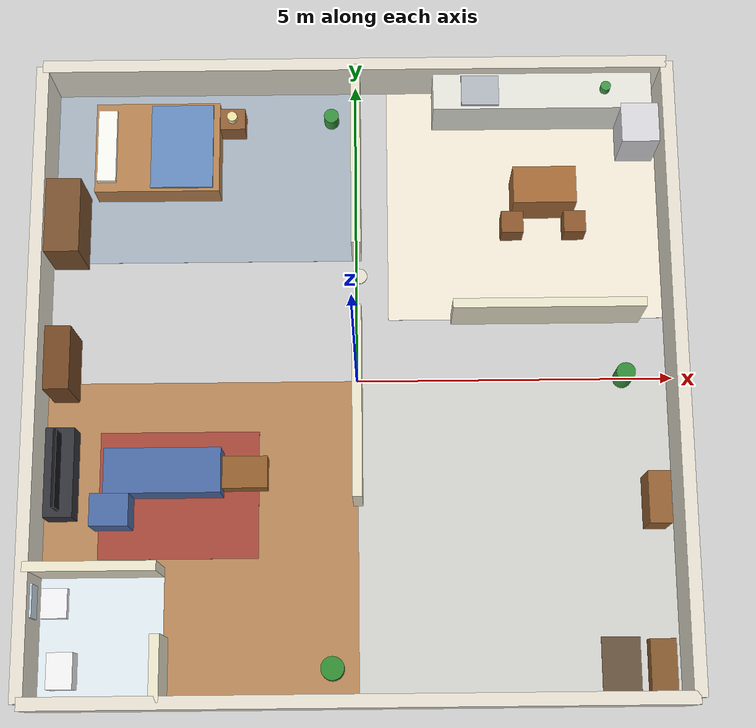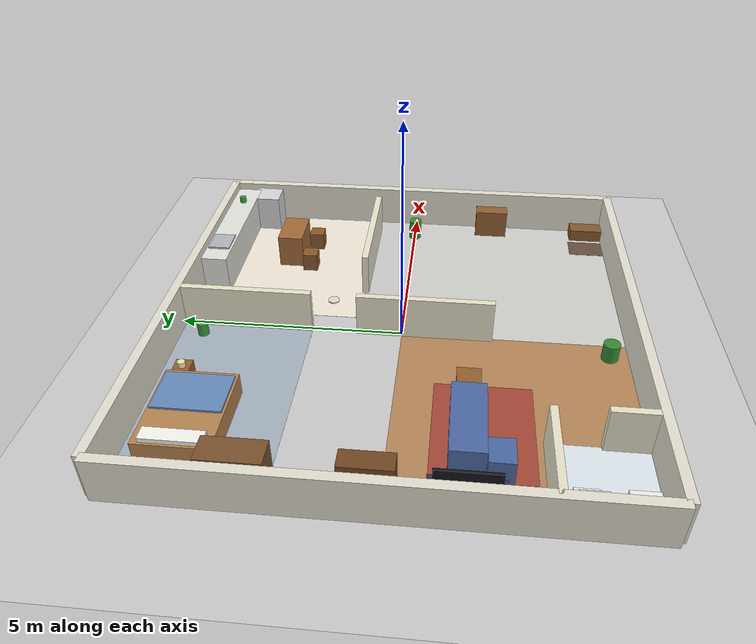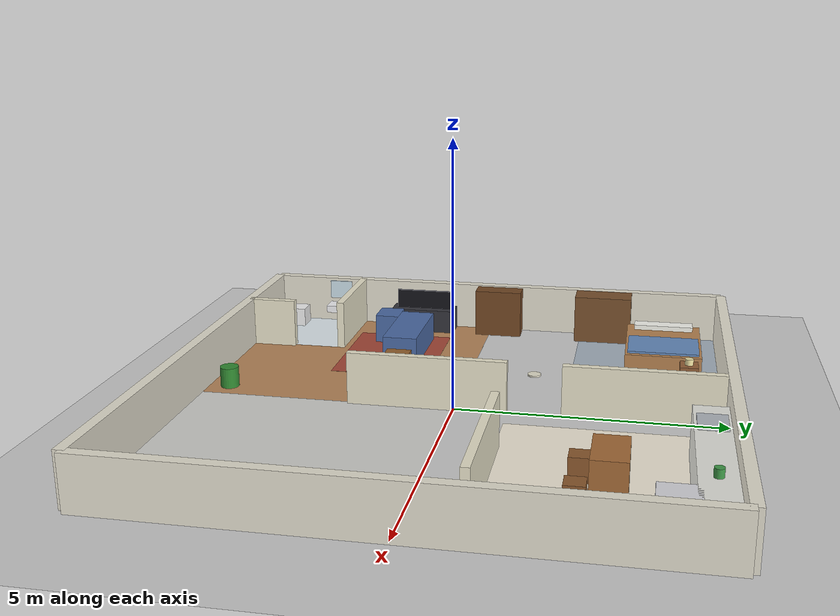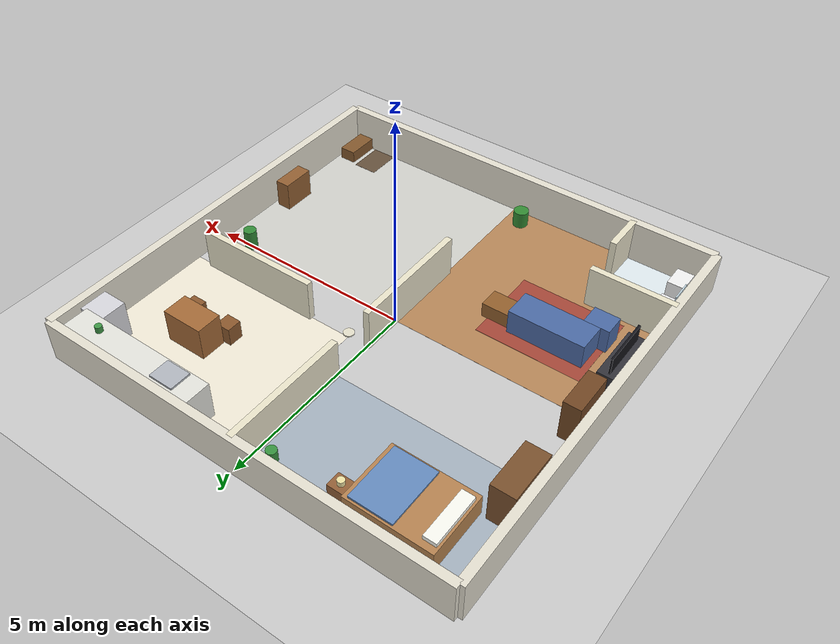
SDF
<?xml version="1.0" ?>
<sdf version="1.8">
  <world name="apartment">
    <!-- Physics configuration -->
    <physics type="ode">
      <real_time_update_rate>1000.0</real_time_update_rate>
      <max_step_size>0.001</max_step_size>
      <real_time_factor>1</real_time_factor>
      <ode>
        <solver>
          <type>quick</type>
          <iters>150</iters>
          <precon_iters>0</precon_iters>
          <sor>1.400000</sor>
          <use_dynamic_moi_rescaling>1</use_dynamic_moi_rescaling>
        </solver>
        <constraints>
          <cfm>0.00001</cfm>
          <erp>0.2</erp>
          <contact_max_correcting_vel>2000.000000</contact_max_correcting_vel>
          <contact_surface_layer>0.01000</contact_surface_layer>
        </constraints>
      </ode>
    </physics>

    <!-- Required Gazebo Harmonic plugins -->
    <plugin
      filename="gz-sim-physics-system"
      name="gz::sim::systems::Physics">
    </plugin>
    <plugin
      filename="gz-sim-user-commands-system"
      name="gz::sim::systems::UserCommands">
    </plugin>
    <plugin
      filename="gz-sim-scene-broadcaster-system"
      name="gz::sim::systems::SceneBroadcaster">
    </plugin>
    <plugin
      filename="gz-sim-sensors-system"
      name="gz::sim::systems::Sensors">
      <render_engine>ogre2</render_engine>
    </plugin>
    <plugin
      filename="gz-sim-imu-system"
      name="gz::sim::systems::Imu">
    </plugin>

    <!-- Ground Plane -->
    <include>
      <uri>https://fuel.gazebosim.org/1.0/OpenRobotics/models/Ground Plane</uri>
    </include>

    <!-- Sun -->
    <include>
      <uri>https://fuel.gazebosim.org/1.0/OpenRobotics/models/Sun</uri>
    </include>

    <!--                         FLOOR TILES                                -->

    <!-- Kitchen floor (light tile) -->
    <model name="floor_kitchen">
      <static>true</static>
      <pose>2.75 3.0 0.001 0 0 0</pose>
      <link name="link">
        <visual name="vis"><geometry><box><size>4.5 4.0 0.002</size></box></geometry>
          <material><ambient>0.95 0.92 0.85 1</ambient><diffuse>0.95 0.92 0.85 1</diffuse></material></visual>
      </link>
    </model>

    <!-- Living room floor (warm wood) -->
    <model name="floor_living">
      <static>true</static>
      <pose>-2.5 -2.5 0.001 0 0 0</pose>
      <link name="link">
        <visual name="vis"><geometry><box><size>5.0 5.0 0.002</size></box></geometry>
          <material><ambient>0.72 0.53 0.35 1</ambient><diffuse>0.72 0.53 0.35 1</diffuse></material></visual>
      </link>
    </model>

    <!-- Bedroom floor (carpet - soft blue-grey) -->
    <model name="floor_bedroom">
      <static>true</static>
      <pose>-2.5 3.5 0.001 0 0 0</pose>
      <link name="link">
        <visual name="vis"><geometry><box><size>5.0 3.0 0.002</size></box></geometry>
          <material><ambient>0.65 0.70 0.75 1</ambient><diffuse>0.65 0.70 0.75 1</diffuse></material></visual>
      </link>
    </model>

    <!-- Hallway floor (neutral grey tile) -->
    <model name="floor_hallway">
      <static>true</static>
      <pose>2.5 -2.5 0.001 0 0 0</pose>
      <link name="link">
        <visual name="vis"><geometry><box><size>5.0 5.0 0.002</size></box></geometry>
          <material><ambient>0.82 0.82 0.80 1</ambient><diffuse>0.82 0.82 0.80 1</diffuse></material></visual>
      </link>
    </model>

    <!--                         OUTER WALLS                                -->

    <model name="wall_north">
      <static>true</static>
      <pose>0 5 0.5 0 0 0</pose>
      <link name="link">
        <collision name="col"><geometry><box><size>10 0.2 1</size></box></geometry></collision>
        <visual name="vis"><geometry><box><size>10 0.2 1</size></box></geometry>
          <material><ambient>0.90 0.88 0.82 1</ambient><diffuse>0.90 0.88 0.82 1</diffuse></material></visual>
      </link>
    </model>

    <model name="wall_south">
      <static>true</static>
      <pose>0 -5 0.5 0 0 0</pose>
      <link name="link">
        <collision name="col"><geometry><box><size>10 0.2 1</size></box></geometry></collision>
        <visual name="vis"><geometry><box><size>10 0.2 1</size></box></geometry>
          <material><ambient>0.90 0.88 0.82 1</ambient><diffuse>0.90 0.88 0.82 1</diffuse></material></visual>
      </link>
    </model>

    <model name="wall_east">
      <static>true</static>
      <pose>5 0 0.5 0 0 1.5708</pose>
      <link name="link">
        <collision name="col"><geometry><box><size>10 0.2 1</size></box></geometry></collision>
        <visual name="vis"><geometry><box><size>10 0.2 1</size></box></geometry>
          <material><ambient>0.90 0.88 0.82 1</ambient><diffuse>0.90 0.88 0.82 1</diffuse></material></visual>
      </link>
    </model>

    <model name="wall_west">
      <static>true</static>
      <pose>-5 0 0.5 0 0 1.5708</pose>
      <link name="link">
        <collision name="col"><geometry><box><size>10 0.2 1</size></box></geometry></collision>
        <visual name="vis"><geometry><box><size>10 0.2 1</size></box></geometry>
          <material><ambient>0.90 0.88 0.82 1</ambient><diffuse>0.90 0.88 0.82 1</diffuse></material></visual>
      </link>
    </model>

    <!--                       INTERIOR WALLS                               -->

    <!-- Interior dividing wall (bedroom/living room split) — lower section -->
    <!-- Runs along X=0, from Y=-2 to Y=1 (doorway gap Y=1 to Y=2) -->
    <model name="wall_interior_left">
      <static>true</static>
      <pose>0 -0.5 0.5 0 0 1.5708</pose>
      <link name="link">
        <collision name="col"><geometry><box><size>3 0.15 1</size></box></geometry></collision>
        <visual name="vis"><geometry><box><size>3 0.15 1</size></box></geometry>
          <material><ambient>0.92 0.90 0.80 1</ambient><diffuse>0.92 0.90 0.80 1</diffuse></material></visual>
      </link>
    </model>

    <!-- Interior dividing wall — upper section (above doorway) -->
    <model name="wall_interior_right">
      <static>true</static>
      <pose>0 3.5 0.5 0 0 1.5708</pose>
      <link name="link">
        <collision name="col"><geometry><box><size>3 0.15 1</size></box></geometry></collision>
        <visual name="vis"><geometry><box><size>3 0.15 1</size></box></geometry>
          <material><ambient>0.92 0.90 0.80 1</ambient><diffuse>0.92 0.90 0.80 1</diffuse></material></visual>
      </link>
    </model>

    <!-- Kitchen wall (partial wall creating kitchen area) -->
    <!-- Runs along Y=1, from X=1.5 to X=4.5 (doorway gap X=0 to X=1.5) -->
    <model name="wall_kitchen">
      <static>true</static>
      <pose>3.0 1 0.5 0 0 0</pose>
      <link name="link">
        <collision name="col"><geometry><box><size>3 0.15 1</size></box></geometry></collision>
        <visual name="vis"><geometry><box><size>3 0.15 1</size></box></geometry>
          <material><ambient>0.92 0.90 0.80 1</ambient><diffuse>0.92 0.90 0.80 1</diffuse></material></visual>
      </link>
    </model>

    <!-- Bathroom wall — creates small bathroom in bottom-left corner -->
    <!-- Runs along Y=-3, from X=-5 to X=-3 -->
    <model name="wall_bathroom_h">
      <static>true</static>
      <pose>-4.0 -3.0 0.5 0 0 0</pose>
      <link name="link">
        <collision name="col"><geometry><box><size>2.0 0.15 1</size></box></geometry></collision>
        <visual name="vis"><geometry><box><size>2.0 0.15 1</size></box></geometry>
          <material><ambient>0.92 0.90 0.80 1</ambient><diffuse>0.92 0.90 0.80 1</diffuse></material></visual>
      </link>
    </model>

    <!-- Bathroom wall vertical — from (-3, -5) to (-3, -3) with doorway gap -->
    <model name="wall_bathroom_v">
      <static>true</static>
      <pose>-3.0 -4.5 0.5 0 0 1.5708</pose>
      <link name="link">
        <collision name="col"><geometry><box><size>1.0 0.15 1</size></box></geometry></collision>
        <visual name="vis"><geometry><box><size>1.0 0.15 1</size></box></geometry>
          <material><ambient>0.92 0.90 0.80 1</ambient><diffuse>0.92 0.90 0.80 1</diffuse></material></visual>
      </link>
    </model>

    <!--                     KITCHEN FURNITURE                              -->

    <!-- Kitchen table (wooden) -->
    <model name="kitchen_table">
      <static>true</static>
      <pose>3.0 3.0 0.4 0 0 0</pose>
      <link name="link">
        <collision name="col"><geometry><box><size>1.0 0.6 0.8</size></box></geometry></collision>
        <visual name="vis"><geometry><box><size>1.0 0.6 0.8</size></box></geometry>
          <material><ambient>0.55 0.35 0.18 1</ambient><diffuse>0.65 0.42 0.22 1</diffuse></material></visual>
      </link>
    </model>

    <!-- Kitchen chair 1 -->
    <model name="kitchen_chair1">
      <static>true</static>
      <pose>2.5 2.5 0.22 0 0 0</pose>
      <link name="link">
        <collision name="col"><geometry><box><size>0.35 0.35 0.44</size></box></geometry></collision>
        <visual name="vis"><geometry><box><size>0.35 0.35 0.44</size></box></geometry>
          <material><ambient>0.50 0.30 0.15 1</ambient><diffuse>0.55 0.35 0.18 1</diffuse></material></visual>
      </link>
    </model>

    <!-- Kitchen chair 2 -->
    <model name="kitchen_chair2">
      <static>true</static>
      <pose>3.5 2.5 0.22 0 0 0</pose>
      <link name="link">
        <collision name="col"><geometry><box><size>0.35 0.35 0.44</size></box></geometry></collision>
        <visual name="vis"><geometry><box><size>0.35 0.35 0.44</size></box></geometry>
          <material><ambient>0.50 0.30 0.15 1</ambient><diffuse>0.55 0.35 0.18 1</diffuse></material></visual>
      </link>
    </model>

    <!-- Kitchen counter (along north wall) -->
    <model name="kitchen_counter">
      <static>true</static>
      <pose>3.0 4.55 0.45 0 0 0</pose>
      <link name="link">
        <collision name="col"><geometry><box><size>3.5 0.6 0.9</size></box></geometry></collision>
        <visual name="vis"><geometry><box><size>3.5 0.6 0.9</size></box></geometry>
          <material><ambient>0.85 0.85 0.82 1</ambient><diffuse>0.90 0.90 0.87 1</diffuse></material></visual>
      </link>
    </model>

    <!-- Fridge (tall, against east wall in kitchen) -->
    <model name="fridge">
      <static>true</static>
      <pose>4.55 4.0 0.45 0 0 0</pose>
      <link name="link">
        <collision name="col"><geometry><box><size>0.6 0.65 0.9</size></box></geometry></collision>
        <visual name="vis"><geometry><box><size>0.6 0.65 0.9</size></box></geometry>
          <material><ambient>0.78 0.78 0.80 1</ambient><diffuse>0.85 0.85 0.87 1</diffuse></material></visual>
      </link>
    </model>

    <!-- Kitchen sink cabinet (on counter, visual only — shorter) -->
    <model name="kitchen_sink">
      <static>true</static>
      <pose>2.0 4.55 0.92 0 0 0</pose>
      <link name="link">
        <visual name="vis"><geometry><box><size>0.6 0.5 0.05</size></box></geometry>
          <material><ambient>0.60 0.62 0.65 1</ambient><diffuse>0.70 0.72 0.75 1</diffuse></material></visual>
      </link>
    </model>

    <!--                    LIVING ROOM FURNITURE                           -->

    <!-- Couch (blue, L-shaped feel) -->
    <model name="couch">
      <static>true</static>
      <pose>-3.0 -1.5 0.3 0 0 0</pose>
      <link name="link">
        <collision name="col"><geometry><box><size>1.8 0.7 0.6</size></box></geometry></collision>
        <visual name="vis"><geometry><box><size>1.8 0.7 0.6</size></box></geometry>
          <material><ambient>0.25 0.35 0.55 1</ambient><diffuse>0.30 0.42 0.65 1</diffuse></material></visual>
      </link>
    </model>

    <!-- Couch arm/side section -->
    <model name="couch_side">
      <static>true</static>
      <pose>-3.8 -2.1 0.3 0 0 0</pose>
      <link name="link">
        <collision name="col"><geometry><box><size>0.6 0.5 0.6</size></box></geometry></collision>
        <visual name="vis"><geometry><box><size>0.6 0.5 0.6</size></box></geometry>
          <material><ambient>0.25 0.35 0.55 1</ambient><diffuse>0.30 0.42 0.65 1</diffuse></material></visual>
      </link>
    </model>

    <!-- Coffee table (low, wooden) -->
    <model name="coffee_table">
      <static>true</static>
      <pose>-1.8 -1.5 0.18 0 0 0</pose>
      <link name="link">
        <collision name="col"><geometry><box><size>0.8 0.5 0.36</size></box></geometry></collision>
        <visual name="vis"><geometry><box><size>0.8 0.5 0.36</size></box></geometry>
          <material><ambient>0.50 0.32 0.15 1</ambient><diffuse>0.58 0.38 0.18 1</diffuse></material></visual>
      </link>
    </model>

    <!-- TV stand (dark, along west wall) -->
    <model name="tv_stand">
      <static>true</static>
      <pose>-4.6 -1.5 0.25 0 0 0</pose>
      <link name="link">
        <collision name="col"><geometry><box><size>0.45 1.4 0.5</size></box></geometry></collision>
        <visual name="vis"><geometry><box><size>0.45 1.4 0.5</size></box></geometry>
          <material><ambient>0.15 0.15 0.18 1</ambient><diffuse>0.20 0.20 0.23 1</diffuse></material></visual>
      </link>
    </model>

    <!-- TV (thin, on stand) -->
    <model name="tv_screen">
      <static>true</static>
      <pose>-4.6 -1.5 0.7 0 0 0</pose>
      <link name="link">
        <visual name="vis"><geometry><box><size>0.05 1.2 0.4</size></box></geometry>
          <material><ambient>0.05 0.05 0.08 1</ambient><diffuse>0.08 0.08 0.10 1</diffuse></material></visual>
      </link>
    </model>

    <!-- Bookshelf (tall, dark wood) -->
    <model name="bookshelf">
      <static>true</static>
      <pose>-4.6 0.2 0.5 0 0 0</pose>
      <link name="link">
        <collision name="col"><geometry><box><size>0.4 1.0 1.0</size></box></geometry></collision>
        <visual name="vis"><geometry><box><size>0.4 1.0 1.0</size></box></geometry>
          <material><ambient>0.40 0.22 0.10 1</ambient><diffuse>0.45 0.28 0.14 1</diffuse></material></visual>
      </link>
    </model>

    <!-- Living room rug (visual only, flat on floor) -->
    <model name="rug">
      <static>true</static>
      <pose>-2.8 -1.8 0.003 0 0 0</pose>
      <link name="link">
        <visual name="vis"><geometry><box><size>2.5 2.0 0.005</size></box></geometry>
          <material><ambient>0.55 0.22 0.18 1</ambient><diffuse>0.65 0.28 0.22 1</diffuse></material></visual>
      </link>
    </model>

    <!-- Floor plant (in corner) -->
    <model name="plant_living">
      <static>true</static>
      <pose>-0.4 -4.5 0.2 0 0 0</pose>
      <link name="link">
        <collision name="col"><geometry><cylinder><radius>0.18</radius><length>0.4</length></cylinder></geometry></collision>
        <visual name="vis"><geometry><cylinder><radius>0.18</radius><length>0.4</length></cylinder></geometry>
          <material><ambient>0.15 0.45 0.15 1</ambient><diffuse>0.20 0.55 0.20 1</diffuse></material></visual>
      </link>
    </model>

    <!-- Plant pot -->
    <model name="plant_pot_living">
      <static>true</static>
      <pose>-0.4 -4.5 0.005 0 0 0</pose>
      <link name="link">
        <visual name="vis"><geometry><cylinder><radius>0.15</radius><length>0.01</length></cylinder></geometry>
          <material><ambient>0.55 0.30 0.15 1</ambient><diffuse>0.60 0.35 0.18 1</diffuse></material></visual>
      </link>
    </model>

    <!--                     BEDROOM FURNITURE                              -->

    <!-- Bed (large, warm brown) -->
    <model name="bed">
      <static>true</static>
      <pose>-3.2 3.8 0.25 0 0 0</pose>
      <link name="link">
        <collision name="col"><geometry><box><size>2.0 1.5 0.5</size></box></geometry></collision>
        <visual name="vis"><geometry><box><size>2.0 1.5 0.5</size></box></geometry>
          <material><ambient>0.65 0.45 0.28 1</ambient><diffuse>0.72 0.52 0.32 1</diffuse></material></visual>
      </link>
    </model>

    <!-- Bed pillow (white, on top of bed) -->
    <model name="pillow">
      <static>true</static>
      <pose>-4.0 3.8 0.55 0 0 0</pose>
      <link name="link">
        <visual name="vis"><geometry><box><size>0.3 1.2 0.1</size></box></geometry>
          <material><ambient>0.95 0.95 0.92 1</ambient><diffuse>0.98 0.98 0.95 1</diffuse></material></visual>
      </link>
    </model>

    <!-- Bed blanket (blue, on top of bed) -->
    <model name="blanket">
      <static>true</static>
      <pose>-2.8 3.8 0.52 0 0 0</pose>
      <link name="link">
        <visual name="vis"><geometry><box><size>1.0 1.4 0.05</size></box></geometry>
          <material><ambient>0.35 0.50 0.70 1</ambient><diffuse>0.40 0.55 0.75 1</diffuse></material></visual>
      </link>
    </model>

    <!-- Nightstand -->
    <model name="nightstand">
      <static>true</static>
      <pose>-2.0 4.3 0.22 0 0 0</pose>
      <link name="link">
        <collision name="col"><geometry><box><size>0.4 0.35 0.44</size></box></geometry></collision>
        <visual name="vis"><geometry><box><size>0.4 0.35 0.44</size></box></geometry>
          <material><ambient>0.50 0.32 0.18 1</ambient><diffuse>0.58 0.38 0.22 1</diffuse></material></visual>
      </link>
    </model>

    <!-- Bedside lamp (on nightstand) -->
    <model name="bedside_lamp">
      <static>true</static>
      <pose>-2.0 4.3 0.5 0 0 0</pose>
      <link name="link">
        <visual name="vis"><geometry><cylinder><radius>0.08</radius><length>0.12</length></cylinder></geometry>
          <material><ambient>0.90 0.85 0.60 1</ambient><diffuse>0.95 0.90 0.65 1</diffuse></material></visual>
      </link>
    </model>

    <!-- Wardrobe (tall, against west wall) -->
    <model name="wardrobe">
      <static>true</static>
      <pose>-4.6 2.5 0.5 0 0 0</pose>
      <link name="link">
        <collision name="col"><geometry><box><size>0.55 1.2 1.0</size></box></geometry></collision>
        <visual name="vis"><geometry><box><size>0.55 1.2 1.0</size></box></geometry>
          <material><ambient>0.42 0.28 0.14 1</ambient><diffuse>0.48 0.32 0.18 1</diffuse></material></visual>
      </link>
    </model>

    <!-- Bedroom plant -->
    <model name="plant_bedroom">
      <static>true</static>
      <pose>-0.4 4.4 0.15 0 0 0</pose>
      <link name="link">
        <collision name="col"><geometry><cylinder><radius>0.12</radius><length>0.3</length></cylinder></geometry></collision>
        <visual name="vis"><geometry><cylinder><radius>0.12</radius><length>0.3</length></cylinder></geometry>
          <material><ambient>0.18 0.50 0.20 1</ambient><diffuse>0.22 0.58 0.25 1</diffuse></material></visual>
      </link>
    </model>

    <!--                    BATHROOM FIXTURES                               -->

    <!-- Bathroom floor tile -->
    <model name="floor_bathroom">
      <static>true</static>
      <pose>-4.0 -4.0 0.002 0 0 0</pose>
      <link name="link">
        <visual name="vis"><geometry><box><size>2.0 2.0 0.003</size></box></geometry>
          <material><ambient>0.85 0.90 0.92 1</ambient><diffuse>0.88 0.92 0.94 1</diffuse></material></visual>
      </link>
    </model>

    <!-- Toilet -->
    <model name="toilet">
      <static>true</static>
      <pose>-4.5 -4.5 0.2 0 0 0</pose>
      <link name="link">
        <collision name="col"><geometry><box><size>0.4 0.55 0.4</size></box></geometry></collision>
        <visual name="vis"><geometry><box><size>0.4 0.55 0.4</size></box></geometry>
          <material><ambient>0.92 0.92 0.92 1</ambient><diffuse>0.95 0.95 0.95 1</diffuse></material></visual>
      </link>
    </model>

    <!-- Bathroom sink (wall-mounted) -->
    <model name="bathroom_sink">
      <static>true</static>
      <pose>-4.6 -3.5 0.4 0 0 0</pose>
      <link name="link">
        <collision name="col"><geometry><box><size>0.4 0.45 0.15</size></box></geometry></collision>
        <visual name="vis"><geometry><box><size>0.4 0.45 0.15</size></box></geometry>
          <material><ambient>0.90 0.90 0.92 1</ambient><diffuse>0.95 0.95 0.96 1</diffuse></material></visual>
      </link>
    </model>

    <!-- Bathroom mirror (visual only, on wall) -->
    <model name="bathroom_mirror">
      <static>true</static>
      <pose>-4.85 -3.5 0.75 0 0 0</pose>
      <link name="link">
        <visual name="vis"><geometry><box><size>0.03 0.5 0.4</size></box></geometry>
          <material><ambient>0.70 0.78 0.85 1</ambient><diffuse>0.80 0.88 0.92 1</diffuse></material></visual>
      </link>
    </model>

    <!--                    HALLWAY / ENTRYWAY                              -->

    <!-- Shoe rack (near "entrance", bottom-right) -->
    <model name="shoe_rack">
      <static>true</static>
      <pose>4.6 -4.5 0.15 0 0 0</pose>
      <link name="link">
        <collision name="col"><geometry><box><size>0.4 0.8 0.3</size></box></geometry></collision>
        <visual name="vis"><geometry><box><size>0.4 0.8 0.3</size></box></geometry>
          <material><ambient>0.45 0.30 0.15 1</ambient><diffuse>0.52 0.35 0.18 1</diffuse></material></visual>
      </link>
    </model>

    <!-- Hallway console table -->
    <model name="console_table">
      <static>true</static>
      <pose>4.6 -2.0 0.35 0 0 0</pose>
      <link name="link">
        <collision name="col"><geometry><box><size>0.35 0.8 0.7</size></box></geometry></collision>
        <visual name="vis"><geometry><box><size>0.35 0.8 0.7</size></box></geometry>
          <material><ambient>0.50 0.32 0.16 1</ambient><diffuse>0.58 0.38 0.20 1</diffuse></material></visual>
      </link>
    </model>

    <!-- Hallway plant -->
    <model name="plant_hallway">
      <static>true</static>
      <pose>4.2 0.0 0.25 0 0 0</pose>
      <link name="link">
        <collision name="col"><geometry><cylinder><radius>0.15</radius><length>0.5</length></cylinder></geometry></collision>
        <visual name="vis"><geometry><cylinder><radius>0.15</radius><length>0.5</length></cylinder></geometry>
          <material><ambient>0.15 0.48 0.18 1</ambient><diffuse>0.20 0.55 0.22 1</diffuse></material></visual>
      </link>
    </model>

    <!-- Welcome mat (visual only, at "entrance") -->
    <model name="welcome_mat">
      <static>true</static>
      <pose>4.0 -4.5 0.003 0 0 0</pose>
      <link name="link">
        <visual name="vis"><geometry><box><size>0.6 0.9 0.005</size></box></geometry>
          <material><ambient>0.35 0.28 0.20 1</ambient><diffuse>0.40 0.32 0.24 1</diffuse></material></visual>
      </link>
    </model>

    <!--                    DECORATIVE ELEMENTS                             -->

    <!-- Kitchen plant (on counter) -->
    <model name="plant_kitchen">
      <static>true</static>
      <pose>4.0 4.55 1.0 0 0 0</pose>
      <link name="link">
        <visual name="vis"><geometry><cylinder><radius>0.08</radius><length>0.15</length></cylinder></geometry>
          <material><ambient>0.20 0.55 0.22 1</ambient><diffuse>0.25 0.60 0.28 1</diffuse></material></visual>
      </link>
    </model>

    <!-- Picture frame on living room wall (visual only) -->
    <model name="picture_frame">
      <static>true</static>
      <pose>0.05 -0.3 0.7 0 0 0</pose>
      <link name="link">
        <visual name="vis"><geometry><box><size>0.03 0.6 0.4</size></box></geometry>
          <material><ambient>0.75 0.60 0.35 1</ambient><diffuse>0.82 0.68 0.42 1</diffuse></material></visual>
      </link>
    </model>

    <!-- Clock on wall (visual only) -->
    <model name="wall_clock">
      <static>true</static>
      <pose>0.05 1.5 0.8 0 0 0</pose>
      <link name="link">
        <visual name="vis"><geometry><cylinder><radius>0.12</radius><length>0.03</length></cylinder></geometry>
          <material><ambient>0.85 0.82 0.75 1</ambient><diffuse>0.90 0.88 0.80 1</diffuse></material></visual>
      </link>
    </model>

  </world>
</sdf>
